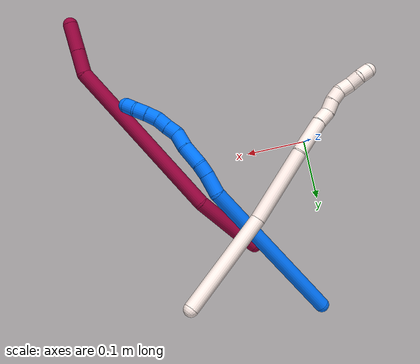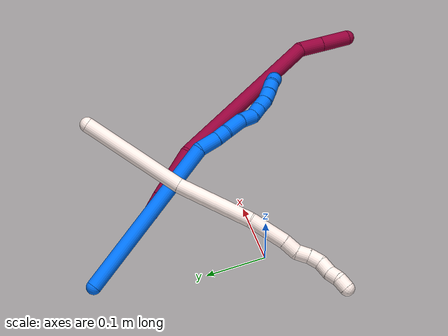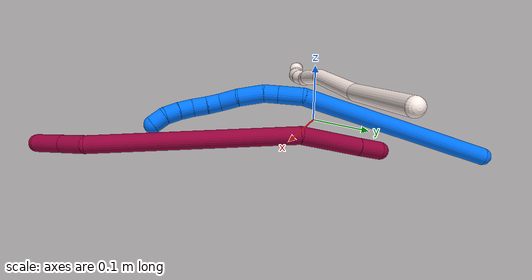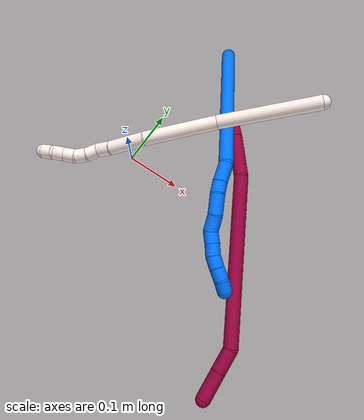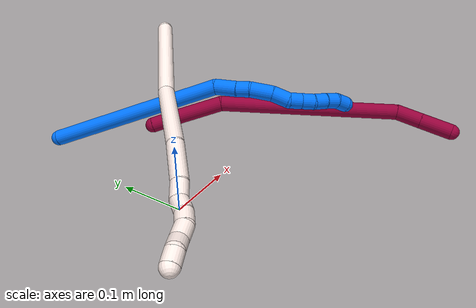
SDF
<sdf version="1.7">
 <world name="default">
  <model name="8">
   <static>0</static>
   <link name="8">
    <collision name="collision-cylinder-e_1_1_4">
     <pose>0.002957 -0.012763 0.010339 0.889952 0.178097 0.085104</pose>
     <geometry><cylinder><radius>0.0125</radius><length>0.033378</length></cylinder></geometry>
     <surface>
      <friction><ode><mu>1.16</mu><mu2>1.16</mu2><slip1>0</slip1><slip2>0</slip2></ode></friction>
      <contact><ode><kp>1e+06</kp><kd>1</kd><max_vel>0</max_vel><min_depth>0.001</min_depth></ode></contact>
     </surface>
    </collision>
    <visual name="visual-cylinder-e_1_1_4">
     <pose>0.002957 -0.012763 0.010339 0.889952 0.178097 0.085104</pose>
     <geometry><cylinder><radius>0.0125</radius><length>0.033378</length></cylinder></geometry>
     <material><ambient>0.584314 0 0.227451 1</ambient></material>
    </visual>
    <collision name="collision-cylinder-e_2_4_5">
     <pose>0.011524 -0.05816 0.048258 0.869122 0.130561 0.060668</pose>
     <geometry><cylinder><radius>0.0125</radius><length>0.08619</length></cylinder></geometry>
     <surface>
      <friction><ode><mu>1.16</mu><mu2>1.16</mu2><slip1>0</slip1><slip2>0</slip2></ode></friction>
      <contact><ode><kp>1e+06</kp><kd>1</kd><max_vel>0</max_vel><min_depth>0.001</min_depth></ode></contact>
     </surface>
    </collision>
    <visual name="visual-cylinder-e_2_4_5">
     <pose>0.011524 -0.05816 0.048258 0.869122 0.130561 0.060668</pose>
     <geometry><cylinder><radius>0.0125</radius><length>0.08619</length></cylinder></geometry>
     <material><ambient>0.584314 0 0.227451 1</ambient></material>
    </visual>
    <collision name="collision-cylinder-e_3_5_6">
     <pose>-0.002751 -0.218317 0.142421 1.08961 -0.137355 -0.083318</pose>
     <geometry><cylinder><radius>0.0125</radius><length>0.290453</length></cylinder></geometry>
     <surface>
      <friction><ode><mu>1.16</mu><mu2>1.16</mu2><slip1>0</slip1><slip2>0</slip2></ode></friction>
      <contact><ode><kp>1e+06</kp><kd>1</kd><max_vel>0</max_vel><min_depth>0.001</min_depth></ode></contact>
     </surface>
    </collision>
    <visual name="visual-cylinder-e_3_5_6">
     <pose>-0.002751 -0.218317 0.142421 1.08961 -0.137355 -0.083318</pose>
     <geometry><cylinder><radius>0.0125</radius><length>0.290453</length></cylinder></geometry>
     <material><ambient>0.584314 0 0.227451 1</ambient></material>
    </visual>
    <collision name="collision-cylinder-e_4_6_7">
     <pose>-0.033836 -0.359995 0.218011 1.00404 -0.588603 -0.329742</pose>
     <geometry><cylinder><radius>0.0125</radius><length>0.040346</length></cylinder></geometry>
     <surface>
      <friction><ode><mu>1.16</mu><mu2>1.16</mu2><slip1>0</slip1><slip2>0</slip2></ode></friction>
      <contact><ode><kp>1e+06</kp><kd>1</kd><max_vel>0</max_vel><min_depth>0.001</min_depth></ode></contact>
     </surface>
    </collision>
    <visual name="visual-cylinder-e_4_6_7">
     <pose>-0.033836 -0.359995 0.218011 1.00404 -0.588603 -0.329742</pose>
     <geometry><cylinder><radius>0.0125</radius><length>0.040346</length></cylinder></geometry>
     <material><ambient>0.584314 0 0.227451 1</ambient></material>
    </visual>
    <collision name="collision-cylinder-e_5_7_2">
     <pose>-0.058728 -0.391627 0.238107 1.00545 -0.584423 -0.327844</pose>
     <geometry><cylinder><radius>0.0125</radius><length>0.049634</length></cylinder></geometry>
     <surface>
      <friction><ode><mu>1.16</mu><mu2>1.16</mu2><slip1>0</slip1><slip2>0</slip2></ode></friction>
      <contact><ode><kp>1e+06</kp><kd>1</kd><max_vel>0</max_vel><min_depth>0.001</min_depth></ode></contact>
     </surface>
    </collision>
    <visual name="visual-cylinder-e_5_7_2">
     <pose>-0.058728 -0.391627 0.238107 1.00545 -0.584423 -0.327844</pose>
     <geometry><cylinder><radius>0.0125</radius><length>0.049634</length></cylinder></geometry>
     <material><ambient>0.584314 0 0.227451 1</ambient></material>
    </visual>
    <collision name="collision-sphere-2">
     <pose>-0.07242 -0.409105 0.249195 0 -0 0</pose>
     <geometry><sphere><radius>0.0125</radius></sphere></geometry>
     <surface>
      <friction><ode><mu>1.16</mu><mu2>1.16</mu2><slip1>0</slip1><slip2>0</slip2></ode></friction>
      <contact><ode><kp>1e+06</kp><kd>1</kd><max_vel>0</max_vel><min_depth>0.001</min_depth></ode></contact>
     </surface>
    </collision>
    <visual name="visual-sphere-2">
     <pose>-0.07242 -0.409105 0.249195 0 -0 0</pose>
     <geometry><sphere><radius>0.0125</radius></sphere></geometry>
     <material><ambient>0.584314 0 0.227451 1</ambient></material>
    </visual>
    <collision name="collision-sphere-7">
     <pose>-0.045036 -0.37415 0.227019 0 -0 0</pose>
     <geometry><sphere><radius>0.0125</radius></sphere></geometry>
     <surface>
      <friction><ode><mu>1.16</mu><mu2>1.16</mu2><slip1>0</slip1><slip2>0</slip2></ode></friction>
      <contact><ode><kp>1e+06</kp><kd>1</kd><max_vel>0</max_vel><min_depth>0.001</min_depth></ode></contact>
     </surface>
    </collision>
    <visual name="visual-sphere-7">
     <pose>-0.045036 -0.37415 0.227019 0 -0 0</pose>
     <geometry><sphere><radius>0.0125</radius></sphere></geometry>
     <material><ambient>0.584314 0 0.227451 1</ambient></material>
    </visual>
    <collision name="collision-sphere-6">
     <pose>-0.022636 -0.34584 0.209003 0 -0 0</pose>
     <geometry><sphere><radius>0.0125</radius></sphere></geometry>
     <surface>
      <friction><ode><mu>1.16</mu><mu2>1.16</mu2><slip1>0</slip1><slip2>0</slip2></ode></friction>
      <contact><ode><kp>1e+06</kp><kd>1</kd><max_vel>0</max_vel><min_depth>0.001</min_depth></ode></contact>
     </surface>
    </collision>
    <visual name="visual-sphere-6">
     <pose>-0.022636 -0.34584 0.209003 0 -0 0</pose>
     <geometry><sphere><radius>0.0125</radius></sphere></geometry>
     <material><ambient>0.584314 0 0.227451 1</ambient></material>
    </visual>
    <collision name="collision-sphere-5">
     <pose>0.017134 -0.090794 0.075839 0 -0 0</pose>
     <geometry><sphere><radius>0.0125</radius></sphere></geometry>
     <surface>
      <friction><ode><mu>1.16</mu><mu2>1.16</mu2><slip1>0</slip1><slip2>0</slip2></ode></friction>
      <contact><ode><kp>1e+06</kp><kd>1</kd><max_vel>0</max_vel><min_depth>0.001</min_depth></ode></contact>
     </surface>
    </collision>
    <visual name="visual-sphere-5">
     <pose>0.017134 -0.090794 0.075839 0 -0 0</pose>
     <geometry><sphere><radius>0.0125</radius></sphere></geometry>
     <material><ambient>0.584314 0 0.227451 1</ambient></material>
    </visual>
    <collision name="collision-sphere-1">
     <geometry><sphere><radius>0.0125</radius></sphere></geometry>
     <surface>
      <friction><ode><mu>1.16</mu><mu2>1.16</mu2><slip1>0</slip1><slip2>0</slip2></ode></friction>
      <contact><ode><kp>1e+06</kp><kd>1</kd><max_vel>0</max_vel><min_depth>0.001</min_depth></ode></contact>
     </surface>
    </collision>
    <visual name="visual-sphere-1">
     <geometry><sphere><radius>0.0125</radius></sphere></geometry>
     <material><ambient>0.584314 0 0.227451 1</ambient></material>
    </visual>
    <collision name="collision-sphere-4">
     <pose>0.005913 -0.025526 0.020677 0 -0 0</pose>
     <geometry><sphere><radius>0.0125</radius></sphere></geometry>
     <surface>
      <friction><ode><mu>1.16</mu><mu2>1.16</mu2><slip1>0</slip1><slip2>0</slip2></ode></friction>
      <contact><ode><kp>1e+06</kp><kd>1</kd><max_vel>0</max_vel><min_depth>0.001</min_depth></ode></contact>
     </surface>
    </collision>
    <visual name="visual-sphere-4">
     <pose>0.005913 -0.025526 0.020677 0 -0 0</pose>
     <geometry><sphere><radius>0.0125</radius></sphere></geometry>
     <material><ambient>0.584314 0 0.227451 1</ambient></material>
    </visual>
    <inertial>
     <pose>-0.007974 -0.205624 0.13297 0 -0 0</pose>
     <mass>0.5</mass>
     <inertia>
      <ixx>0.001926</ixx>
      <ixy>0</ixy>
      <ixz>0</ixz>
      <iyy>0.000817</iyy>
      <iyz>0</iyz>
      <izz>0.002166</izz>
     </inertia>
    </inertial>
   </link>
   <pose>0.124348 0.152447 0.03147 0.45196 -0.471275 0.649708</pose>
  </model>
  <model name="11">
   <static>0</static>
   <link name="11">
    <collision name="collision-cylinder-e_1_1_4">
     <pose>-0.000584 -0.004877 -0.088415 3.08649 -0.006592 -0.238033</pose>
     <geometry><cylinder><radius>0.0125</radius><length>0.177102</length></cylinder></geometry>
     <surface>
      <friction><ode><mu>1.16</mu><mu2>1.16</mu2><slip1>0</slip1><slip2>0</slip2></ode></friction>
      <contact><ode><kp>1e+06</kp><kd>1</kd><max_vel>0</max_vel><min_depth>0.001</min_depth></ode></contact>
     </surface>
    </collision>
    <visual name="visual-cylinder-e_1_1_4">
     <pose>-0.000584 -0.004877 -0.088415 3.08649 -0.006592 -0.238033</pose>
     <geometry><cylinder><radius>0.0125</radius><length>0.177102</length></cylinder></geometry>
     <material><ambient>1 0.933333 0.909804 1</ambient></material>
    </visual>
    <collision name="collision-cylinder-e_2_4_5">
     <pose>-0.0042 -0.022562 -0.239881 2.94119 -0.047095 -0.460227</pose>
     <geometry><cylinder><radius>0.0125</radius><length>0.12882</length></cylinder></geometry>
     <surface>
      <friction><ode><mu>1.16</mu><mu2>1.16</mu2><slip1>0</slip1><slip2>0</slip2></ode></friction>
      <contact><ode><kp>1e+06</kp><kd>1</kd><max_vel>0</max_vel><min_depth>0.001</min_depth></ode></contact>
     </surface>
    </collision>
    <visual name="visual-cylinder-e_2_4_5">
     <pose>-0.0042 -0.022562 -0.239881 2.94119 -0.047095 -0.460227</pose>
     <geometry><cylinder><radius>0.0125</radius><length>0.12882</length></cylinder></geometry>
     <material><ambient>1 0.933333 0.909804 1</ambient></material>
    </visual>
    <collision name="collision-cylinder-e_3_5_6">
     <pose>-0.004571 -0.037238 -0.334681 3.08281 0.083469 1.91475</pose>
     <geometry><cylinder><radius>0.0125</radius><length>0.063829</length></cylinder></geometry>
     <surface>
      <friction><ode><mu>1.16</mu><mu2>1.16</mu2><slip1>0</slip1><slip2>0</slip2></ode></friction>
      <contact><ode><kp>1e+06</kp><kd>1</kd><max_vel>0</max_vel><min_depth>0.001</min_depth></ode></contact>
     </surface>
    </collision>
    <visual name="visual-cylinder-e_3_5_6">
     <pose>-0.004571 -0.037238 -0.334681 3.08281 0.083469 1.91475</pose>
     <geometry><cylinder><radius>0.0125</radius><length>0.063829</length></cylinder></geometry>
     <material><ambient>1 0.933333 0.909804 1</ambient></material>
    </visual>
    <collision name="collision-cylinder-e_4_6_7">
     <pose>-0.001046 -0.037905 -0.379138 -3.04741 0.067575 -1.24445</pose>
     <geometry><cylinder><radius>0.0125</radius><length>0.025589</length></cylinder></geometry>
     <surface>
      <friction><ode><mu>1.16</mu><mu2>1.16</mu2><slip1>0</slip1><slip2>0</slip2></ode></friction>
      <contact><ode><kp>1e+06</kp><kd>1</kd><max_vel>0</max_vel><min_depth>0.001</min_depth></ode></contact>
     </surface>
    </collision>
    <visual name="visual-cylinder-e_4_6_7">
     <pose>-0.001046 -0.037905 -0.379138 -3.04741 0.067575 -1.24445</pose>
     <geometry><cylinder><radius>0.0125</radius><length>0.025589</length></cylinder></geometry>
     <material><ambient>1 0.933333 0.909804 1</ambient></material>
    </visual>
    <collision name="collision-cylinder-e_5_7_8">
     <pose>0.000527 -0.040201 -0.402155 2.81461 0.065062 0.389544</pose>
     <geometry><cylinder><radius>0.0125</radius><length>0.021816</length></cylinder></geometry>
     <surface>
      <friction><ode><mu>1.16</mu><mu2>1.16</mu2><slip1>0</slip1><slip2>0</slip2></ode></friction>
      <contact><ode><kp>1e+06</kp><kd>1</kd><max_vel>0</max_vel><min_depth>0.001</min_depth></ode></contact>
     </surface>
    </collision>
    <visual name="visual-cylinder-e_5_7_8">
     <pose>0.000527 -0.040201 -0.402155 2.81461 0.065062 0.389544</pose>
     <geometry><cylinder><radius>0.0125</radius><length>0.021816</length></cylinder></geometry>
     <material><ambient>1 0.933333 0.909804 1</ambient></material>
    </visual>
    <collision name="collision-cylinder-e_6_8_9">
     <pose>0.000205 -0.045104 -0.422508 3.00246 -0.101265 -1.25757</pose>
     <geometry><cylinder><radius>0.0125</radius><length>0.020389</length></cylinder></geometry>
     <surface>
      <friction><ode><mu>1.16</mu><mu2>1.16</mu2><slip1>0</slip1><slip2>0</slip2></ode></friction>
      <contact><ode><kp>1e+06</kp><kd>1</kd><max_vel>0</max_vel><min_depth>0.001</min_depth></ode></contact>
     </surface>
    </collision>
    <visual name="visual-cylinder-e_6_8_9">
     <pose>0.000205 -0.045104 -0.422508 3.00246 -0.101265 -1.25757</pose>
     <geometry><cylinder><radius>0.0125</radius><length>0.020389</length></cylinder></geometry>
     <material><ambient>1 0.933333 0.909804 1</ambient></material>
    </visual>
    <collision name="collision-cylinder-e_7_9_10">
     <pose>-0.003722 -0.044533 -0.443151 -2.95713 -0.262418 1.91896</pose>
     <geometry><cylinder><radius>0.0125</radius><length>0.022329</length></cylinder></geometry>
     <surface>
      <friction><ode><mu>1.16</mu><mu2>1.16</mu2><slip1>0</slip1><slip2>0</slip2></ode></friction>
      <contact><ode><kp>1e+06</kp><kd>1</kd><max_vel>0</max_vel><min_depth>0.001</min_depth></ode></contact>
     </surface>
    </collision>
    <visual name="visual-cylinder-e_7_9_10">
     <pose>-0.003722 -0.044533 -0.443151 -2.95713 -0.262418 1.91896</pose>
     <geometry><cylinder><radius>0.0125</radius><length>0.022329</length></cylinder></geometry>
     <material><ambient>1 0.933333 0.909804 1</ambient></material>
    </visual>
    <collision name="collision-cylinder-e_8_10_11">
     <pose>-0.011106 -0.043767 -0.46267 3.0065 -0.46259 -2.58216</pose>
     <geometry><cylinder><radius>0.0125</radius><length>0.020116</length></cylinder></geometry>
     <surface>
      <friction><ode><mu>1.16</mu><mu2>1.16</mu2><slip1>0</slip1><slip2>0</slip2></ode></friction>
      <contact><ode><kp>1e+06</kp><kd>1</kd><max_vel>0</max_vel><min_depth>0.001</min_depth></ode></contact>
     </surface>
    </collision>
    <visual name="visual-cylinder-e_8_10_11">
     <pose>-0.011106 -0.043767 -0.46267 3.0065 -0.46259 -2.58216</pose>
     <geometry><cylinder><radius>0.0125</radius><length>0.020116</length></cylinder></geometry>
     <material><ambient>1 0.933333 0.909804 1</ambient></material>
    </visual>
    <collision name="collision-cylinder-e_9_11_2">
     <pose>-0.017102 -0.043011 -0.481281 -2.94116 -0.151226 1.29138</pose>
     <geometry><cylinder><radius>0.0125</radius><length>0.020009</length></cylinder></geometry>
     <surface>
      <friction><ode><mu>1.16</mu><mu2>1.16</mu2><slip1>0</slip1><slip2>0</slip2></ode></friction>
      <contact><ode><kp>1e+06</kp><kd>1</kd><max_vel>0</max_vel><min_depth>0.001</min_depth></ode></contact>
     </surface>
    </collision>
    <visual name="visual-cylinder-e_9_11_2">
     <pose>-0.017102 -0.043011 -0.481281 -2.94116 -0.151226 1.29138</pose>
     <geometry><cylinder><radius>0.0125</radius><length>0.020009</length></cylinder></geometry>
     <material><ambient>1 0.933333 0.909804 1</ambient></material>
    </visual>
    <collision name="collision-sphere-2">
     <pose>-0.018609 -0.041042 -0.490973 0 -0 0</pose>
     <geometry><sphere><radius>0.0125</radius></sphere></geometry>
     <surface>
      <friction><ode><mu>1.16</mu><mu2>1.16</mu2><slip1>0</slip1><slip2>0</slip2></ode></friction>
      <contact><ode><kp>1e+06</kp><kd>1</kd><max_vel>0</max_vel><min_depth>0.001</min_depth></ode></contact>
     </surface>
    </collision>
    <visual name="visual-sphere-2">
     <pose>-0.018609 -0.041042 -0.490973 0 -0 0</pose>
     <geometry><sphere><radius>0.0125</radius></sphere></geometry>
     <material><ambient>1 0.933333 0.909804 1</ambient></material>
    </visual>
    <collision name="collision-sphere-11">
     <pose>-0.015595 -0.04498 -0.471588 0 -0 0</pose>
     <geometry><sphere><radius>0.0125</radius></sphere></geometry>
     <surface>
      <friction><ode><mu>1.16</mu><mu2>1.16</mu2><slip1>0</slip1><slip2>0</slip2></ode></friction>
      <contact><ode><kp>1e+06</kp><kd>1</kd><max_vel>0</max_vel><min_depth>0.001</min_depth></ode></contact>
     </surface>
    </collision>
    <visual name="visual-sphere-11">
     <pose>-0.015595 -0.04498 -0.471588 0 -0 0</pose>
     <geometry><sphere><radius>0.0125</radius></sphere></geometry>
     <material><ambient>1 0.933333 0.909804 1</ambient></material>
    </visual>
    <collision name="collision-sphere-10">
     <pose>-0.006618 -0.042555 -0.453751 0 -0 0</pose>
     <geometry><sphere><radius>0.0125</radius></sphere></geometry>
     <surface>
      <friction><ode><mu>1.16</mu><mu2>1.16</mu2><slip1>0</slip1><slip2>0</slip2></ode></friction>
      <contact><ode><kp>1e+06</kp><kd>1</kd><max_vel>0</max_vel><min_depth>0.001</min_depth></ode></contact>
     </surface>
    </collision>
    <visual name="visual-sphere-10">
     <pose>-0.006618 -0.042555 -0.453751 0 -0 0</pose>
     <geometry><sphere><radius>0.0125</radius></sphere></geometry>
     <material><ambient>1 0.933333 0.909804 1</ambient></material>
    </visual>
    <collision name="collision-sphere-9">
     <pose>-0.000825 -0.04651 -0.432552 0 -0 0</pose>
     <geometry><sphere><radius>0.0125</radius></sphere></geometry>
     <surface>
      <friction><ode><mu>1.16</mu><mu2>1.16</mu2><slip1>0</slip1><slip2>0</slip2></ode></friction>
      <contact><ode><kp>1e+06</kp><kd>1</kd><max_vel>0</max_vel><min_depth>0.001</min_depth></ode></contact>
     </surface>
    </collision>
    <visual name="visual-sphere-9">
     <pose>-0.000825 -0.04651 -0.432552 0 -0 0</pose>
     <geometry><sphere><radius>0.0125</radius></sphere></geometry>
     <material><ambient>1 0.933333 0.909804 1</ambient></material>
    </visual>
    <collision name="collision-sphere-4">
     <pose>-0.001167 -0.009755 -0.17683 0 -0 0</pose>
     <geometry><sphere><radius>0.0125</radius></sphere></geometry>
     <surface>
      <friction><ode><mu>1.16</mu><mu2>1.16</mu2><slip1>0</slip1><slip2>0</slip2></ode></friction>
      <contact><ode><kp>1e+06</kp><kd>1</kd><max_vel>0</max_vel><min_depth>0.001</min_depth></ode></contact>
     </surface>
    </collision>
    <visual name="visual-sphere-4">
     <pose>-0.001167 -0.009755 -0.17683 0 -0 0</pose>
     <geometry><sphere><radius>0.0125</radius></sphere></geometry>
     <material><ambient>1 0.933333 0.909804 1</ambient></material>
    </visual>
    <collision name="collision-sphere-1">
     <geometry><sphere><radius>0.0125</radius></sphere></geometry>
     <surface>
      <friction><ode><mu>1.16</mu><mu2>1.16</mu2><slip1>0</slip1><slip2>0</slip2></ode></friction>
      <contact><ode><kp>1e+06</kp><kd>1</kd><max_vel>0</max_vel><min_depth>0.001</min_depth></ode></contact>
     </surface>
    </collision>
    <visual name="visual-sphere-1">
     <geometry><sphere><radius>0.0125</radius></sphere></geometry>
     <material><ambient>1 0.933333 0.909804 1</ambient></material>
    </visual>
    <collision name="collision-sphere-8">
     <pose>0.001236 -0.043697 -0.412463 0 -0 0</pose>
     <geometry><sphere><radius>0.0125</radius></sphere></geometry>
     <surface>
      <friction><ode><mu>1.16</mu><mu2>1.16</mu2><slip1>0</slip1><slip2>0</slip2></ode></friction>
      <contact><ode><kp>1e+06</kp><kd>1</kd><max_vel>0</max_vel><min_depth>0.001</min_depth></ode></contact>
     </surface>
    </collision>
    <visual name="visual-sphere-8">
     <pose>0.001236 -0.043697 -0.412463 0 -0 0</pose>
     <geometry><sphere><radius>0.0125</radius></sphere></geometry>
     <material><ambient>1 0.933333 0.909804 1</ambient></material>
    </visual>
    <collision name="collision-sphere-5">
     <pose>-0.007232 -0.035369 -0.302932 0 -0 0</pose>
     <geometry><sphere><radius>0.0125</radius></sphere></geometry>
     <surface>
      <friction><ode><mu>1.16</mu><mu2>1.16</mu2><slip1>0</slip1><slip2>0</slip2></ode></friction>
      <contact><ode><kp>1e+06</kp><kd>1</kd><max_vel>0</max_vel><min_depth>0.001</min_depth></ode></contact>
     </surface>
    </collision>
    <visual name="visual-sphere-5">
     <pose>-0.007232 -0.035369 -0.302932 0 -0 0</pose>
     <geometry><sphere><radius>0.0125</radius></sphere></geometry>
     <material><ambient>1 0.933333 0.909804 1</ambient></material>
    </visual>
    <collision name="collision-sphere-6">
     <pose>-0.00191 -0.039106 -0.366429 0 -0 0</pose>
     <geometry><sphere><radius>0.0125</radius></sphere></geometry>
     <surface>
      <friction><ode><mu>1.16</mu><mu2>1.16</mu2><slip1>0</slip1><slip2>0</slip2></ode></friction>
      <contact><ode><kp>1e+06</kp><kd>1</kd><max_vel>0</max_vel><min_depth>0.001</min_depth></ode></contact>
     </surface>
    </collision>
    <visual name="visual-sphere-6">
     <pose>-0.00191 -0.039106 -0.366429 0 -0 0</pose>
     <geometry><sphere><radius>0.0125</radius></sphere></geometry>
     <material><ambient>1 0.933333 0.909804 1</ambient></material>
    </visual>
    <collision name="collision-sphere-7">
     <pose>-0.000182 -0.036705 -0.391847 0 -0 0</pose>
     <geometry><sphere><radius>0.0125</radius></sphere></geometry>
     <surface>
      <friction><ode><mu>1.16</mu><mu2>1.16</mu2><slip1>0</slip1><slip2>0</slip2></ode></friction>
      <contact><ode><kp>1e+06</kp><kd>1</kd><max_vel>0</max_vel><min_depth>0.001</min_depth></ode></contact>
     </surface>
    </collision>
    <visual name="visual-sphere-7">
     <pose>-0.000182 -0.036705 -0.391847 0 -0 0</pose>
     <geometry><sphere><radius>0.0125</radius></sphere></geometry>
     <material><ambient>1 0.933333 0.909804 1</ambient></material>
    </visual>
    <inertial>
     <pose>-0.003192 -0.023298 -0.247688 0 -0 0</pose>
     <mass>0.5</mass>
     <inertia>
      <ixx>0.000442</ixx>
      <ixy>0</ixy>
      <ixz>0</ixz>
      <iyy>-0.000782</iyy>
      <iyz>0</iyz>
      <izz>3.6e-05</izz>
     </inertia>
    </inertial>
   </link>
   <pose>0.244659 0.215463 0.152639 -1.09531 0.873245 -0.548568</pose>
  </model>
  <model name="14">
   <static>0</static>
   <link name="14">
    <collision name="collision-cylinder-e_1_1_4">
     <pose>0.049515 -0.118773 -0.05672 2.01633 0.359813 0.561566</pose>
     <geometry><cylinder><radius>0.0125</radius><length>0.281253</length></cylinder></geometry>
     <surface>
      <friction><ode><mu>1.16</mu><mu2>1.16</mu2><slip1>0</slip1><slip2>0</slip2></ode></friction>
      <contact><ode><kp>1e+06</kp><kd>1</kd><max_vel>0</max_vel><min_depth>0.001</min_depth></ode></contact>
     </surface>
    </collision>
    <visual name="visual-cylinder-e_1_1_4">
     <pose>0.049515 -0.118773 -0.05672 2.01633 0.359813 0.561566</pose>
     <geometry><cylinder><radius>0.0125</radius><length>0.281253</length></cylinder></geometry>
     <material><ambient>0 0.462745 1 1</ambient></material>
    </visual>
    <collision name="collision-cylinder-e_2_4_5">
     <pose>0.106059 -0.247573 -0.125833 2.46125 0.415324 1.07394</pose>
     <geometry><cylinder><radius>0.0125</radius><length>0.034845</length></cylinder></geometry>
     <surface>
      <friction><ode><mu>1.16</mu><mu2>1.16</mu2><slip1>0</slip1><slip2>0</slip2></ode></friction>
      <contact><ode><kp>1e+06</kp><kd>1</kd><max_vel>0</max_vel><min_depth>0.001</min_depth></ode></contact>
     </surface>
    </collision>
    <visual name="visual-cylinder-e_2_4_5">
     <pose>0.106059 -0.247573 -0.125833 2.46125 0.415324 1.07394</pose>
     <geometry><cylinder><radius>0.0125</radius><length>0.034845</length></cylinder></geometry>
     <material><ambient>0 0.462745 1 1</ambient></material>
    </visual>
    <collision name="collision-cylinder-e_3_5_6">
     <pose>0.117773 -0.264002 -0.144655 2.35846 0.476646 1.06369</pose>
     <geometry><cylinder><radius>0.0125</radius><length>0.020421</length></cylinder></geometry>
     <surface>
      <friction><ode><mu>1.16</mu><mu2>1.16</mu2><slip1>0</slip1><slip2>0</slip2></ode></friction>
      <contact><ode><kp>1e+06</kp><kd>1</kd><max_vel>0</max_vel><min_depth>0.001</min_depth></ode></contact>
     </surface>
    </collision>
    <visual name="visual-cylinder-e_3_5_6">
     <pose>0.117773 -0.264002 -0.144655 2.35846 0.476646 1.06369</pose>
     <geometry><cylinder><radius>0.0125</radius><length>0.020421</length></cylinder></geometry>
     <material><ambient>0 0.462745 1 1</ambient></material>
    </visual>
    <collision name="collision-cylinder-e_4_6_7">
     <pose>0.133733 -0.278788 -0.162119 2.49174 0.682941 1.62431</pose>
     <geometry><cylinder><radius>0.0125</radius><length>0.035731</length></cylinder></geometry>
     <surface>
      <friction><ode><mu>1.16</mu><mu2>1.16</mu2><slip1>0</slip1><slip2>0</slip2></ode></friction>
      <contact><ode><kp>1e+06</kp><kd>1</kd><max_vel>0</max_vel><min_depth>0.001</min_depth></ode></contact>
     </surface>
    </collision>
    <visual name="visual-cylinder-e_4_6_7">
     <pose>0.133733 -0.278788 -0.162119 2.49174 0.682941 1.62431</pose>
     <geometry><cylinder><radius>0.0125</radius><length>0.035731</length></cylinder></geometry>
     <material><ambient>0 0.462745 1 1</ambient></material>
    </visual>
    <collision name="collision-cylinder-e_5_7_8">
     <pose>0.153102 -0.291116 -0.183346 2.77255 0.637484 2.11211</pose>
     <geometry><cylinder><radius>0.0125</radius><length>0.027201</length></cylinder></geometry>
     <surface>
      <friction><ode><mu>1.16</mu><mu2>1.16</mu2><slip1>0</slip1><slip2>0</slip2></ode></friction>
      <contact><ode><kp>1e+06</kp><kd>1</kd><max_vel>0</max_vel><min_depth>0.001</min_depth></ode></contact>
     </surface>
    </collision>
    <visual name="visual-cylinder-e_5_7_8">
     <pose>0.153102 -0.291116 -0.183346 2.77255 0.637484 2.11211</pose>
     <geometry><cylinder><radius>0.0125</radius><length>0.027201</length></cylinder></geometry>
     <material><ambient>0 0.462745 1 1</ambient></material>
    </visual>
    <collision name="collision-cylinder-e_6_8_9">
     <pose>0.16879 -0.300139 -0.197662 2.25247 0.859631 1.53236</pose>
     <geometry><cylinder><radius>0.0125</radius><length>0.020046</length></cylinder></geometry>
     <surface>
      <friction><ode><mu>1.16</mu><mu2>1.16</mu2><slip1>0</slip1><slip2>0</slip2></ode></friction>
      <contact><ode><kp>1e+06</kp><kd>1</kd><max_vel>0</max_vel><min_depth>0.001</min_depth></ode></contact>
     </surface>
    </collision>
    <visual name="visual-cylinder-e_6_8_9">
     <pose>0.16879 -0.300139 -0.197662 2.25247 0.859631 1.53236</pose>
     <geometry><cylinder><radius>0.0125</radius><length>0.020046</length></cylinder></geometry>
     <material><ambient>0 0.462745 1 1</ambient></material>
    </visual>
    <collision name="collision-cylinder-e_7_9_10">
     <pose>0.183529 -0.310601 -0.206468 2.28692 0.786192 1.47726</pose>
     <geometry><cylinder><radius>0.0125</radius><length>0.020195</length></cylinder></geometry>
     <surface>
      <friction><ode><mu>1.16</mu><mu2>1.16</mu2><slip1>0</slip1><slip2>0</slip2></ode></friction>
      <contact><ode><kp>1e+06</kp><kd>1</kd><max_vel>0</max_vel><min_depth>0.001</min_depth></ode></contact>
     </surface>
    </collision>
    <visual name="visual-cylinder-e_7_9_10">
     <pose>0.183529 -0.310601 -0.206468 2.28692 0.786192 1.47726</pose>
     <geometry><cylinder><radius>0.0125</radius><length>0.020195</length></cylinder></geometry>
     <material><ambient>0 0.462745 1 1</ambient></material>
    </visual>
    <collision name="collision-cylinder-e_8_10_11">
     <pose>0.198756 -0.32148 -0.21358 1.9868 0.931315 1.31408</pose>
     <geometry><cylinder><radius>0.0125</radius><length>0.020143</length></cylinder></geometry>
     <surface>
      <friction><ode><mu>1.16</mu><mu2>1.16</mu2><slip1>0</slip1><slip2>0</slip2></ode></friction>
      <contact><ode><kp>1e+06</kp><kd>1</kd><max_vel>0</max_vel><min_depth>0.001</min_depth></ode></contact>
     </surface>
    </collision>
    <visual name="visual-cylinder-e_8_10_11">
     <pose>0.198756 -0.32148 -0.21358 1.9868 0.931315 1.31408</pose>
     <geometry><cylinder><radius>0.0125</radius><length>0.020143</length></cylinder></geometry>
     <material><ambient>0 0.462745 1 1</ambient></material>
    </visual>
    <collision name="collision-cylinder-e_9_11_12">
     <pose>0.215436 -0.331736 -0.218056 1.9771 1.02866 1.41852</pose>
     <geometry><cylinder><radius>0.0125</radius><length>0.020076</length></cylinder></geometry>
     <surface>
      <friction><ode><mu>1.16</mu><mu2>1.16</mu2><slip1>0</slip1><slip2>0</slip2></ode></friction>
      <contact><ode><kp>1e+06</kp><kd>1</kd><max_vel>0</max_vel><min_depth>0.001</min_depth></ode></contact>
     </surface>
    </collision>
    <visual name="visual-cylinder-e_9_11_12">
     <pose>0.215436 -0.331736 -0.218056 1.9771 1.02866 1.41852</pose>
     <geometry><cylinder><radius>0.0125</radius><length>0.020076</length></cylinder></geometry>
     <material><ambient>0 0.462745 1 1</ambient></material>
    </visual>
    <collision name="collision-cylinder-e_10_12_2">
     <pose>0.233427 -0.33824 -0.223202 2.62835 1.20869 2.41529</pose>
     <geometry><cylinder><radius>0.0125</radius><length>0.020088</length></cylinder></geometry>
     <surface>
      <friction><ode><mu>1.16</mu><mu2>1.16</mu2><slip1>0</slip1><slip2>0</slip2></ode></friction>
      <contact><ode><kp>1e+06</kp><kd>1</kd><max_vel>0</max_vel><min_depth>0.001</min_depth></ode></contact>
     </surface>
    </collision>
    <visual name="visual-cylinder-e_10_12_2">
     <pose>0.233427 -0.33824 -0.223202 2.62835 1.20869 2.41529</pose>
     <geometry><cylinder><radius>0.0125</radius><length>0.020088</length></cylinder></geometry>
     <material><ambient>0 0.462745 1 1</ambient></material>
    </visual>
    <collision name="collision-sphere-2">
     <pose>0.24282 -0.339987 -0.226302 0 -0 0</pose>
     <geometry><sphere><radius>0.0125</radius></sphere></geometry>
     <surface>
      <friction><ode><mu>1.16</mu><mu2>1.16</mu2><slip1>0</slip1><slip2>0</slip2></ode></friction>
      <contact><ode><kp>1e+06</kp><kd>1</kd><max_vel>0</max_vel><min_depth>0.001</min_depth></ode></contact>
     </surface>
    </collision>
    <visual name="visual-sphere-2">
     <pose>0.24282 -0.339987 -0.226302 0 -0 0</pose>
     <geometry><sphere><radius>0.0125</radius></sphere></geometry>
     <material><ambient>0 0.462745 1 1</ambient></material>
    </visual>
    <collision name="collision-sphere-12">
     <pose>0.224035 -0.336493 -0.220102 0 -0 0</pose>
     <geometry><sphere><radius>0.0125</radius></sphere></geometry>
     <surface>
      <friction><ode><mu>1.16</mu><mu2>1.16</mu2><slip1>0</slip1><slip2>0</slip2></ode></friction>
      <contact><ode><kp>1e+06</kp><kd>1</kd><max_vel>0</max_vel><min_depth>0.001</min_depth></ode></contact>
     </surface>
    </collision>
    <visual name="visual-sphere-12">
     <pose>0.224035 -0.336493 -0.220102 0 -0 0</pose>
     <geometry><sphere><radius>0.0125</radius></sphere></geometry>
     <material><ambient>0 0.462745 1 1</ambient></material>
    </visual>
    <collision name="collision-sphere-11">
     <pose>0.206837 -0.326978 -0.216009 0 -0 0</pose>
     <geometry><sphere><radius>0.0125</radius></sphere></geometry>
     <surface>
      <friction><ode><mu>1.16</mu><mu2>1.16</mu2><slip1>0</slip1><slip2>0</slip2></ode></friction>
      <contact><ode><kp>1e+06</kp><kd>1</kd><max_vel>0</max_vel><min_depth>0.001</min_depth></ode></contact>
     </surface>
    </collision>
    <visual name="visual-sphere-11">
     <pose>0.206837 -0.326978 -0.216009 0 -0 0</pose>
     <geometry><sphere><radius>0.0125</radius></sphere></geometry>
     <material><ambient>0 0.462745 1 1</ambient></material>
    </visual>
    <collision name="collision-sphere-10">
     <pose>0.190675 -0.315983 -0.211151 0 -0 0</pose>
     <geometry><sphere><radius>0.0125</radius></sphere></geometry>
     <surface>
      <friction><ode><mu>1.16</mu><mu2>1.16</mu2><slip1>0</slip1><slip2>0</slip2></ode></friction>
      <contact><ode><kp>1e+06</kp><kd>1</kd><max_vel>0</max_vel><min_depth>0.001</min_depth></ode></contact>
     </surface>
    </collision>
    <visual name="visual-sphere-10">
     <pose>0.190675 -0.315983 -0.211151 0 -0 0</pose>
     <geometry><sphere><radius>0.0125</radius></sphere></geometry>
     <material><ambient>0 0.462745 1 1</ambient></material>
    </visual>
    <collision name="collision-sphere-9">
     <pose>0.176384 -0.305219 -0.201784 0 -0 0</pose>
     <geometry><sphere><radius>0.0125</radius></sphere></geometry>
     <surface>
      <friction><ode><mu>1.16</mu><mu2>1.16</mu2><slip1>0</slip1><slip2>0</slip2></ode></friction>
      <contact><ode><kp>1e+06</kp><kd>1</kd><max_vel>0</max_vel><min_depth>0.001</min_depth></ode></contact>
     </surface>
    </collision>
    <visual name="visual-sphere-9">
     <pose>0.176384 -0.305219 -0.201784 0 -0 0</pose>
     <geometry><sphere><radius>0.0125</radius></sphere></geometry>
     <material><ambient>0 0.462745 1 1</ambient></material>
    </visual>
    <collision name="collision-sphere-4">
     <pose>0.099029 -0.237545 -0.113441 0 -0 0</pose>
     <geometry><sphere><radius>0.0125</radius></sphere></geometry>
     <surface>
      <friction><ode><mu>1.16</mu><mu2>1.16</mu2><slip1>0</slip1><slip2>0</slip2></ode></friction>
      <contact><ode><kp>1e+06</kp><kd>1</kd><max_vel>0</max_vel><min_depth>0.001</min_depth></ode></contact>
     </surface>
    </collision>
    <visual name="visual-sphere-4">
     <pose>0.099029 -0.237545 -0.113441 0 -0 0</pose>
     <geometry><sphere><radius>0.0125</radius></sphere></geometry>
     <material><ambient>0 0.462745 1 1</ambient></material>
    </visual>
    <collision name="collision-sphere-1">
     <geometry><sphere><radius>0.0125</radius></sphere></geometry>
     <surface>
      <friction><ode><mu>1.16</mu><mu2>1.16</mu2><slip1>0</slip1><slip2>0</slip2></ode></friction>
      <contact><ode><kp>1e+06</kp><kd>1</kd><max_vel>0</max_vel><min_depth>0.001</min_depth></ode></contact>
     </surface>
    </collision>
    <visual name="visual-sphere-1">
     <geometry><sphere><radius>0.0125</radius></sphere></geometry>
     <material><ambient>0 0.462745 1 1</ambient></material>
    </visual>
    <collision name="collision-sphere-8">
     <pose>0.161197 -0.295059 -0.19354 0 -0 0</pose>
     <geometry><sphere><radius>0.0125</radius></sphere></geometry>
     <surface>
      <friction><ode><mu>1.16</mu><mu2>1.16</mu2><slip1>0</slip1><slip2>0</slip2></ode></friction>
      <contact><ode><kp>1e+06</kp><kd>1</kd><max_vel>0</max_vel><min_depth>0.001</min_depth></ode></contact>
     </surface>
    </collision>
    <visual name="visual-sphere-8">
     <pose>0.161197 -0.295059 -0.19354 0 -0 0</pose>
     <geometry><sphere><radius>0.0125</radius></sphere></geometry>
     <material><ambient>0 0.462745 1 1</ambient></material>
    </visual>
    <collision name="collision-sphere-5">
     <pose>0.113089 -0.257601 -0.138225 0 -0 0</pose>
     <geometry><sphere><radius>0.0125</radius></sphere></geometry>
     <surface>
      <friction><ode><mu>1.16</mu><mu2>1.16</mu2><slip1>0</slip1><slip2>0</slip2></ode></friction>
      <contact><ode><kp>1e+06</kp><kd>1</kd><max_vel>0</max_vel><min_depth>0.001</min_depth></ode></contact>
     </surface>
    </collision>
    <visual name="visual-sphere-5">
     <pose>0.113089 -0.257601 -0.138225 0 -0 0</pose>
     <geometry><sphere><radius>0.0125</radius></sphere></geometry>
     <material><ambient>0 0.462745 1 1</ambient></material>
    </visual>
    <collision name="collision-sphere-6">
     <pose>0.122458 -0.270403 -0.151085 0 -0 0</pose>
     <geometry><sphere><radius>0.0125</radius></sphere></geometry>
     <surface>
      <friction><ode><mu>1.16</mu><mu2>1.16</mu2><slip1>0</slip1><slip2>0</slip2></ode></friction>
      <contact><ode><kp>1e+06</kp><kd>1</kd><max_vel>0</max_vel><min_depth>0.001</min_depth></ode></contact>
     </surface>
    </collision>
    <visual name="visual-sphere-6">
     <pose>0.122458 -0.270403 -0.151085 0 -0 0</pose>
     <geometry><sphere><radius>0.0125</radius></sphere></geometry>
     <material><ambient>0 0.462745 1 1</ambient></material>
    </visual>
    <collision name="collision-sphere-7">
     <pose>0.145007 -0.287174 -0.173153 0 -0 0</pose>
     <geometry><sphere><radius>0.0125</radius></sphere></geometry>
     <surface>
      <friction><ode><mu>1.16</mu><mu2>1.16</mu2><slip1>0</slip1><slip2>0</slip2></ode></friction>
      <contact><ode><kp>1e+06</kp><kd>1</kd><max_vel>0</max_vel><min_depth>0.001</min_depth></ode></contact>
     </surface>
    </collision>
    <visual name="visual-sphere-7">
     <pose>0.145007 -0.287174 -0.173153 0 -0 0</pose>
     <geometry><sphere><radius>0.0125</radius></sphere></geometry>
     <material><ambient>0 0.462745 1 1</ambient></material>
    </visual>
    <inertial>
     <pose>0.098155 -0.195045 -0.110734 0 -0 0</pose>
     <mass>0.5</mass>
     <inertia>
      <ixx>0.002442</ixx>
      <ixy>0</ixy>
      <ixz>0</ixz>
      <iyy>0.000561</iyy>
      <iyz>0</iyz>
      <izz>0.000898</izz>
     </inertia>
    </inertial>
   </link>
   <pose>0.034088 0.280571 0.012462 -1.19933 0.580708 -0.232805</pose>
  </model>
 </world>
</sdf>
